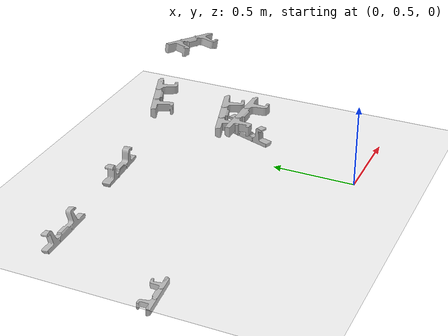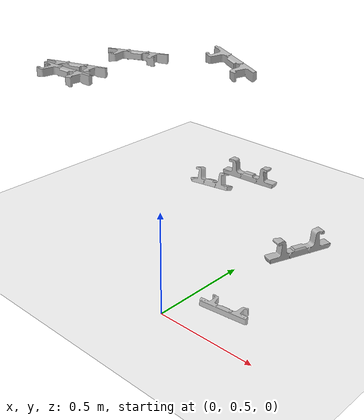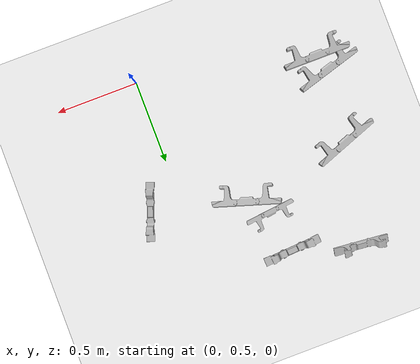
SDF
<sdf version="1.6">
 <world name="default">
  <light name="sun" type="directional">
   <pose>0 0 10 0 -0 0</pose>
   <diffuse>0.8 0.8 0.8 1</diffuse>
   <specular>0.2 0.2 0.2 1</specular>
   <attenuation>
    <range>1000</range>
    <constant>0.9</constant>
    <linear>0.01</linear>
    <quadratic>0.001</quadratic>
   </attenuation>
   <direction>-0.5 0.1 -0.9</direction>
  </light>
  <model name="ground_plane">
   <static>1</static>
   <link name="link">
    <collision name="collision">
     <geometry><plane><normal>0 0 1</normal><size>100 100</size></plane></geometry>
     <surface><friction><ode><mu>100</mu><mu2>50</mu2></ode></friction></surface>
    </collision>
    <visual name="visual">
     <cast_shadows>0</cast_shadows>
     <geometry><plane><normal>0 0 1</normal><size>100 100</size></plane></geometry>
     <material>
      <script><uri>file://media/materials/scripts/gazebo.material</uri><name>Gazebo/Grey</name></script>
     </material>
    </visual>
   </link>
  </model>
  <gravity>0 0 -9.8</gravity>
  <magnetic_field>6e-06 2.3e-05 -4.2e-05</magnetic_field>
  <atmosphere type="adiabatic"/>
  <physics name="default_physics" default="0" type="ode">
   <max_step_size>0.001</max_step_size>
   <real_time_factor>1</real_time_factor>
   <real_time_update_rate>1000</real_time_update_rate>
  </physics>
  <scene><ambient>0.4 0.4 0.4 1</ambient><background>0.7 0.7 0.7 1</background><shadows>1</shadows></scene>
  <audio><device>default</device></audio>
  <spherical_coordinates>
   <surface_model>EARTH_WGS84</surface_model>
   <latitude_deg>0</latitude_deg>
   <longitude_deg>0</longitude_deg>
   <elevation>0</elevation>
   <heading_deg>0</heading_deg>
  </spherical_coordinates>
  <model name="grelha">
   <pose>-0.716067 1.02326 0.029409 2e-06 -0 0.29051</pose>
   <link name="link">
    <inertial>
     <mass>5</mass>
     <inertia><ixx>0.01</ixx><iyy>0.06</iyy><izz>0.07</izz><ixy>0</ixy><ixz>0</ixz><iyz>0</iyz></inertia>
    </inertial>
    <collision name="collision">
     <geometry><mesh><uri>model://grelha/meshes/grelha.stl</uri></mesh></geometry>
    </collision>
    <visual name="visual"><geometry><mesh><uri>model://grelha/meshes/grelha.stl</uri></mesh></geometry></visual>
   </link>
  </model>
  <model name="grelha_clone">
   <pose>-0.676412 1.4208 0.029407 -1.9e-05 3.1e-05 0.359728</pose>
   <link name="link">
    <inertial>
     <mass>5</mass>
     <inertia><ixx>0.01</ixx><iyy>0.06</iyy><izz>0.07</izz><ixy>0</ixy><ixz>0</ixz><iyz>0</iyz></inertia>
    </inertial>
    <collision name="collision">
     <geometry><mesh><uri>model://grelha/meshes/grelha.stl</uri></mesh></geometry>
    </collision>
    <visual name="visual"><geometry><mesh><uri>model://grelha/meshes/grelha.stl</uri></mesh></geometry></visual>
   </link>
  </model>
  <model name="grelha_clone_0">
   <pose>-0.141021 1.43891 0.053681 0.089207 0.137824 -0.299199</pose>
   <link name="link">
    <inertial>
     <mass>5</mass>
     <inertia><ixx>0.01</ixx><iyy>0.06</iyy><izz>0.07</izz><ixy>0</ixy><ixz>0</ixz><iyz>0</iyz></inertia>
    </inertial>
    <collision name="collision">
     <geometry><mesh><uri>model://grelha/meshes/grelha.stl</uri></mesh></geometry>
    </collision>
    <visual name="visual"><geometry><mesh><uri>model://grelha/meshes/grelha.stl</uri></mesh></geometry></visual>
   </link>
  </model>
  <model name="grelha_clone_1">
   <pose>-0.176018 0.983505 0.020211 -1.57081 -4e-06 0.064692</pose>
   <link name="link">
    <inertial>
     <mass>5</mass>
     <inertia><ixx>0.01</ixx><iyy>0.06</iyy><izz>0.07</izz><ixy>0</ixy><ixz>0</ixz><iyz>0</iyz></inertia>
    </inertial>
    <collision name="collision">
     <geometry><mesh><uri>model://grelha/meshes/grelha.stl</uri></mesh></geometry>
    </collision>
    <visual name="visual"><geometry><mesh><uri>model://grelha/meshes/grelha.stl</uri></mesh></geometry></visual>
   </link>
  </model>
  <model name="grelha_clone_2">
   <pose>-0.657438 0.855697 0.029404 -0.000127 3.7e-05 0.000935</pose>
   <link name="link">
    <inertial>
     <mass>5</mass>
     <inertia><ixx>0.01</ixx><iyy>0.06</iyy><izz>0.07</izz><ixy>0</ixy><ixz>0</ixz><iyz>0</iyz></inertia>
    </inertial>
    <collision name="collision">
     <geometry><mesh><uri>model://grelha/meshes/grelha.stl</uri></mesh></geometry>
    </collision>
    <visual name="visual"><geometry><mesh><uri>model://grelha/meshes/grelha.stl</uri></mesh></geometry></visual>
   </link>
  </model>
  <model name="grelha_clone_3">
   <pose>-0.757204 1.09189 0.04959 -1.83554 -0.156838 -0.107402</pose>
   <link name="link">
    <inertial>
     <mass>5</mass>
     <inertia><ixx>0.01</ixx><iyy>0.06</iyy><izz>0.07</izz><ixy>0</ixy><ixz>0</ixz><iyz>0</iyz></inertia>
    </inertial>
    <collision name="collision">
     <geometry><mesh><uri>model://grelha/meshes/grelha.stl</uri></mesh></geometry>
    </collision>
    <visual name="visual"><geometry><mesh><uri>model://grelha/meshes/grelha.stl</uri></mesh></geometry></visual>
   </link>
  </model>
  <model name="grelha_clone_4">
   <pose>-0.661075 1.24546 0.020213 -1.57063 6.6e-05 -1.91513</pose>
   <link name="link">
    <inertial>
     <mass>5</mass>
     <inertia><ixx>0.01</ixx><iyy>0.06</iyy><izz>0.07</izz><ixy>0</ixy><ixz>0</ixz><iyz>0</iyz></inertia>
    </inertial>
    <collision name="collision">
     <geometry><mesh><uri>model://grelha/meshes/grelha.stl</uri></mesh></geometry>
    </collision>
    <visual name="visual"><geometry><mesh><uri>model://grelha/meshes/grelha.stl</uri></mesh></geometry></visual>
   </link>
  </model>
  <model name="grelha_clone_5">
   <pose>-0.213573 1.5238 0.020591 3.14158 0 0.11274</pose>
   <link name="link">
    <inertial>
     <mass>5</mass>
     <inertia><ixx>0.01</ixx><iyy>0.06</iyy><izz>0.07</izz><ixy>0</ixy><ixz>0</ixz><iyz>0</iyz></inertia>
    </inertial>
    <collision name="collision">
     <geometry><mesh><uri>model://grelha/meshes/grelha.stl</uri></mesh></geometry>
    </collision>
    <visual name="visual"><geometry><mesh><uri>model://grelha/meshes/grelha.stl</uri></mesh></geometry></visual>
   </link>
  </model>
 </world>
</sdf>
